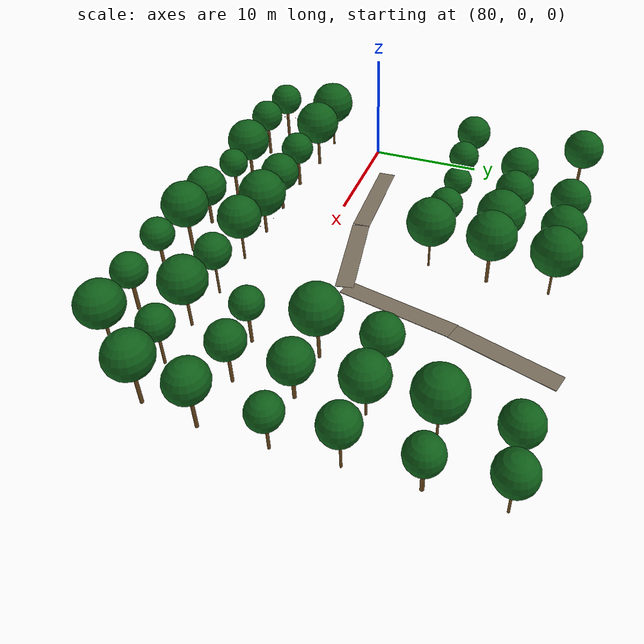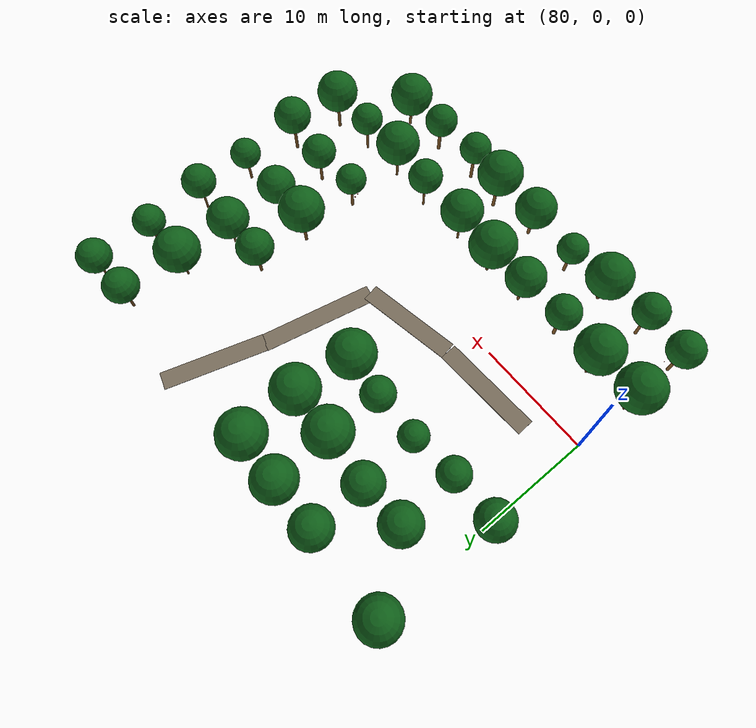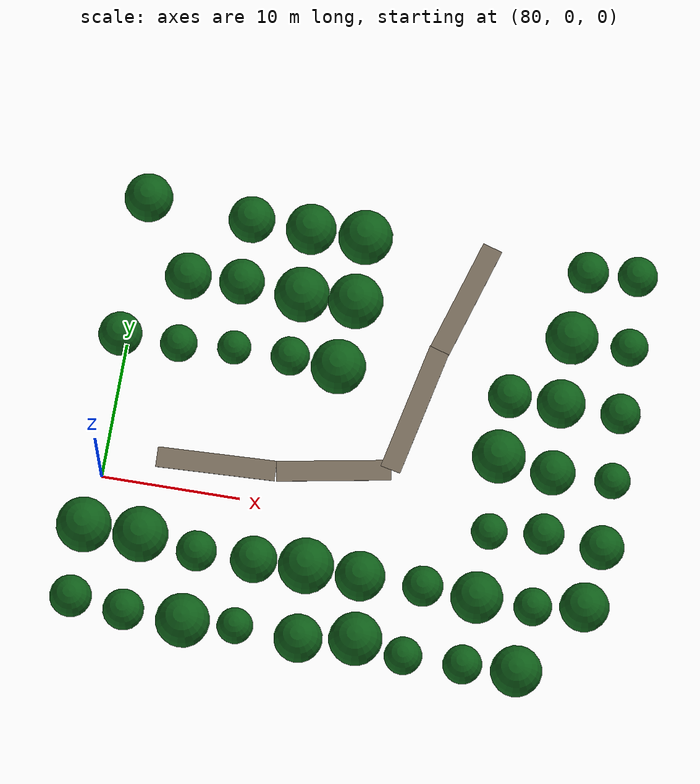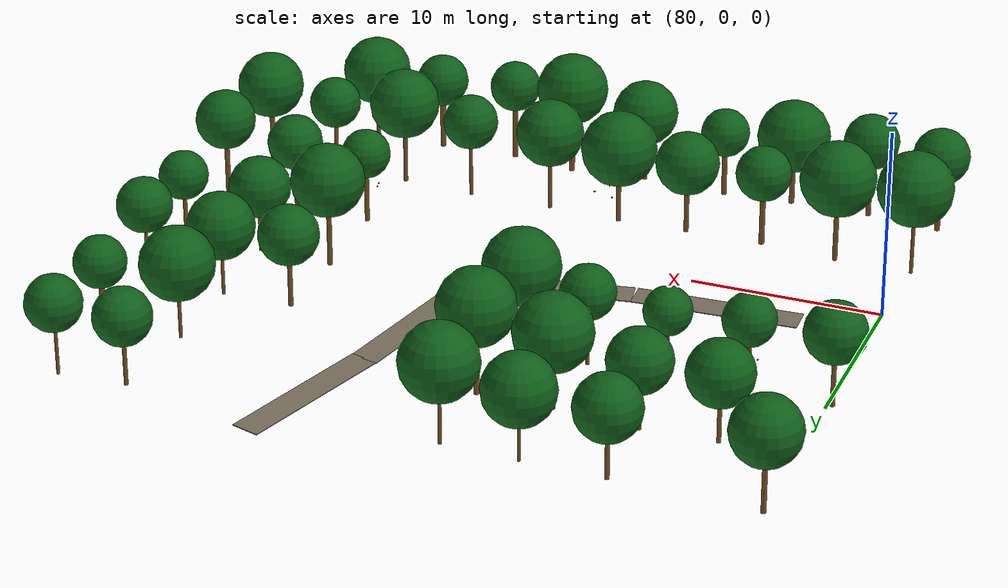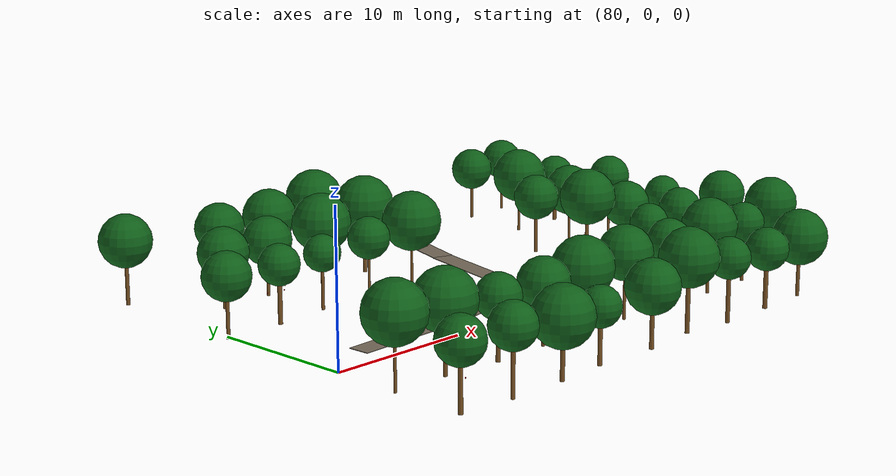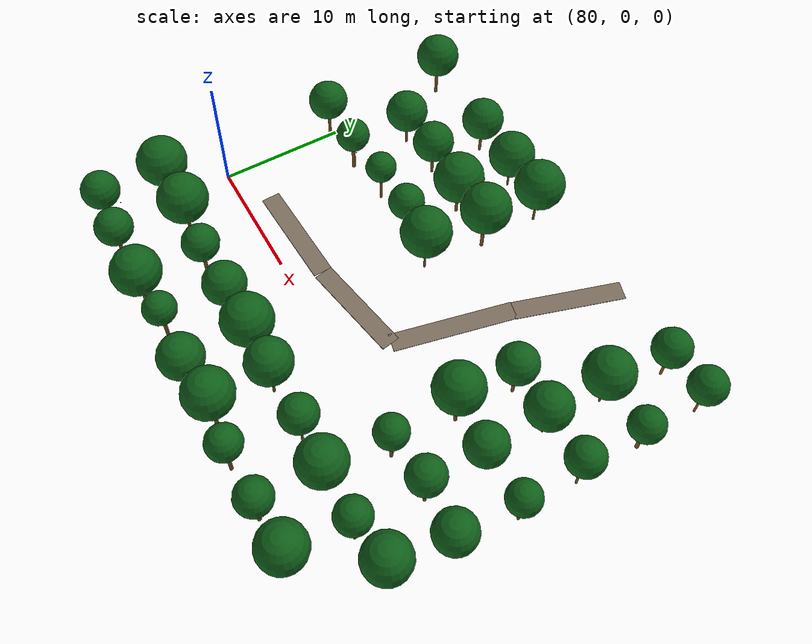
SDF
<sdf version="1.9">
 <world name="cheongsong_orchard">
  <model name="road_32">
   <static>true</static>
   <pose>87.9 2.3 0.02 0 0 0.0412</pose>
   <link name="link">
    <collision name="collision">
     <geometry><box><size>8.6 1.5 0.04</size></box></geometry>
     <surface><friction><ode><mu>0.9</mu><mu2>0.9</mu2></ode></friction></surface>
    </collision>
    <visual name="visual">
     <geometry><box><size>8.6 1.5 0.04</size></box></geometry>
     <material><ambient>0.4 0.35 0.28 1</ambient><diffuse>0.5 0.45 0.38 1</diffuse></material>
    </visual>
   </link>
  </model>
  <model name="road_33">
   <static>true</static>
   <pose>96.3 3.2 0.02 0 0 0.1778</pose>
   <link name="link">
    <collision name="collision">
     <geometry><box><size>8.2 1.5 0.04</size></box></geometry>
     <surface><friction><ode><mu>0.9</mu><mu2>0.9</mu2></ode></friction></surface>
    </collision>
    <visual name="visual">
     <geometry><box><size>8.2 1.5 0.04</size></box></geometry>
     <material><ambient>0.4 0.35 0.28 1</ambient><diffuse>0.5 0.45 0.38 1</diffuse></material>
    </visual>
   </link>
  </model>
  <model name="road_34">
   <static>true</static>
   <pose>101.3 8.7 0.02 0 0 1.3587</pose>
   <link name="link">
    <collision name="collision">
     <geometry><box><size>9.7 1.5 0.04</size></box></geometry>
     <surface><friction><ode><mu>0.9</mu><mu2>0.9</mu2></ode></friction></surface>
    </collision>
    <visual name="visual">
     <geometry><box><size>9.7 1.5 0.04</size></box></geometry>
     <material><ambient>0.4 0.35 0.28 1</ambient><diffuse>0.5 0.45 0.38 1</diffuse></material>
    </visual>
   </link>
  </model>
  <model name="road_35">
   <static>true</static>
   <pose>103.6 17.5 0.02 0 0 1.2752</pose>
   <link name="link">
    <collision name="collision">
     <geometry><box><size>8.7 1.5 0.04</size></box></geometry>
     <surface><friction><ode><mu>0.9</mu><mu2>0.9</mu2></ode></friction></surface>
    </collision>
    <visual name="visual">
     <geometry><box><size>8.7 1.5 0.04</size></box></geometry>
     <material><ambient>0.4 0.35 0.28 1</ambient><diffuse>0.5 0.45 0.38 1</diffuse></material>
    </visual>
   </link>
  </model>
  <model name="apple_tree_1160">
   <static>true</static>
   <pose>79.80 -10.03 0 0 0 0</pose>
   <link name="link">
    <collision name="trunk_col">
     <pose>0 0 1.37 0 0 0</pose>
     <geometry><cylinder><radius>0.137</radius><length>2.74</length></cylinder></geometry>
    </collision>
    <visual name="trunk_vis">
     <pose>0 0 1.37 0 0 0</pose>
     <geometry><cylinder><radius>0.137</radius><length>2.74</length></cylinder></geometry>
     <material><ambient>0.35 0.22 0.08 1</ambient><diffuse>0.45 0.30 0.12 1</diffuse></material>
    </visual>
    <collision name="canopy_col">
     <pose>0 0 4.25 0 0 0</pose>
     <geometry><sphere><radius>1.50</radius></sphere></geometry>
    </collision>
    <visual name="canopy_vis">
     <pose>0 0 4.25 0 0 0</pose>
     <geometry><sphere><radius>1.50</radius></sphere></geometry>
     <material><ambient>0.04 0.28 0.06 1</ambient><diffuse>0.06 0.38 0.10 1</diffuse></material>
    </visual>
   </link>
  </model>
  <model name="apple_tree_1161">
   <static>true</static>
   <pose>83.63 -10.39 0 0 0 0</pose>
   <link name="link">
    <collision name="trunk_col">
     <pose>0 0 1.41 0 0 0</pose>
     <geometry><cylinder><radius>0.130</radius><length>2.81</length></cylinder></geometry>
    </collision>
    <visual name="trunk_vis">
     <pose>0 0 1.41 0 0 0</pose>
     <geometry><cylinder><radius>0.130</radius><length>2.81</length></cylinder></geometry>
     <material><ambient>0.35 0.22 0.08 1</ambient><diffuse>0.45 0.30 0.12 1</diffuse></material>
    </visual>
    <collision name="canopy_col">
     <pose>0 0 4.29 0 0 0</pose>
     <geometry><sphere><radius>1.47</radius></sphere></geometry>
    </collision>
    <visual name="canopy_vis">
     <pose>0 0 4.29 0 0 0</pose>
     <geometry><sphere><radius>1.47</radius></sphere></geometry>
     <material><ambient>0.04 0.28 0.06 1</ambient><diffuse>0.06 0.38 0.10 1</diffuse></material>
    </visual>
   </link>
  </model>
  <model name="apple_tree_1162">
   <static>true</static>
   <pose>87.84 -10.38 0 0 0 0</pose>
   <link name="link">
    <collision name="trunk_col">
     <pose>0 0 0.99 0 0 0</pose>
     <geometry><cylinder><radius>0.139</radius><length>1.97</length></cylinder></geometry>
    </collision>
    <visual name="trunk_vis">
     <pose>0 0 0.99 0 0 0</pose>
     <geometry><cylinder><radius>0.139</radius><length>1.97</length></cylinder></geometry>
     <material><ambient>0.35 0.22 0.08 1</ambient><diffuse>0.45 0.30 0.12 1</diffuse></material>
    </visual>
    <collision name="canopy_col">
     <pose>0 0 3.90 0 0 0</pose>
     <geometry><sphere><radius>1.93</radius></sphere></geometry>
    </collision>
    <visual name="canopy_vis">
     <pose>0 0 3.90 0 0 0</pose>
     <geometry><sphere><radius>1.93</radius></sphere></geometry>
     <material><ambient>0.04 0.28 0.06 1</ambient><diffuse>0.06 0.38 0.10 1</diffuse></material>
    </visual>
   </link>
  </model>
  <model name="apple_tree_1163">
   <static>true</static>
   <pose>91.52 -10.08 0 0 0 0</pose>
   <link name="link">
    <collision name="trunk_col">
     <pose>0 0 1.16 0 0 0</pose>
     <geometry><cylinder><radius>0.135</radius><length>2.32</length></cylinder></geometry>
    </collision>
    <visual name="trunk_vis">
     <pose>0 0 1.16 0 0 0</pose>
     <geometry><cylinder><radius>0.135</radius><length>2.32</length></cylinder></geometry>
     <material><ambient>0.35 0.22 0.08 1</ambient><diffuse>0.45 0.30 0.12 1</diffuse></material>
    </visual>
    <collision name="canopy_col">
     <pose>0 0 3.61 0 0 0</pose>
     <geometry><sphere><radius>1.29</radius></sphere></geometry>
    </collision>
    <visual name="canopy_vis">
     <pose>0 0 3.61 0 0 0</pose>
     <geometry><sphere><radius>1.29</radius></sphere></geometry>
     <material><ambient>0.04 0.28 0.06 1</ambient><diffuse>0.06 0.38 0.10 1</diffuse></material>
    </visual>
   </link>
  </model>
  <model name="apple_tree_1164">
   <static>true</static>
   <pose>96.07 -10.31 0 0 0 0</pose>
   <link name="link">
    <collision name="trunk_col">
     <pose>0 0 1.09 0 0 0</pose>
     <geometry><cylinder><radius>0.137</radius><length>2.18</length></cylinder></geometry>
    </collision>
    <visual name="trunk_vis">
     <pose>0 0 1.09 0 0 0</pose>
     <geometry><cylinder><radius>0.137</radius><length>2.18</length></cylinder></geometry>
     <material><ambient>0.35 0.22 0.08 1</ambient><diffuse>0.45 0.30 0.12 1</diffuse></material>
    </visual>
    <collision name="canopy_col">
     <pose>0 0 3.91 0 0 0</pose>
     <geometry><sphere><radius>1.73</radius></sphere></geometry>
    </collision>
    <visual name="canopy_vis">
     <pose>0 0 3.91 0 0 0</pose>
     <geometry><sphere><radius>1.73</radius></sphere></geometry>
     <material><ambient>0.04 0.28 0.06 1</ambient><diffuse>0.06 0.38 0.10 1</diffuse></material>
    </visual>
   </link>
  </model>
  <model name="apple_tree_1165">
   <static>true</static>
   <pose>100.08 -9.90 0 0 0 0</pose>
   <link name="link">
    <collision name="trunk_col">
     <pose>0 0 1.46 0 0 0</pose>
     <geometry><cylinder><radius>0.142</radius><length>2.92</length></cylinder></geometry>
    </collision>
    <visual name="trunk_vis">
     <pose>0 0 1.46 0 0 0</pose>
     <geometry><cylinder><radius>0.142</radius><length>2.92</length></cylinder></geometry>
     <material><ambient>0.35 0.22 0.08 1</ambient><diffuse>0.45 0.30 0.12 1</diffuse></material>
    </visual>
    <collision name="canopy_col">
     <pose>0 0 4.83 0 0 0</pose>
     <geometry><sphere><radius>1.90</radius></sphere></geometry>
    </collision>
    <visual name="canopy_vis">
     <pose>0 0 4.83 0 0 0</pose>
     <geometry><sphere><radius>1.90</radius></sphere></geometry>
     <material><ambient>0.04 0.28 0.06 1</ambient><diffuse>0.06 0.38 0.10 1</diffuse></material>
    </visual>
   </link>
  </model>
  <model name="apple_tree_1166">
   <static>true</static>
   <pose>103.55 -10.40 0 0 0 0</pose>
   <link name="link">
    <collision name="trunk_col">
     <pose>0 0 1.43 0 0 0</pose>
     <geometry><cylinder><radius>0.136</radius><length>2.85</length></cylinder></geometry>
    </collision>
    <visual name="trunk_vis">
     <pose>0 0 1.43 0 0 0</pose>
     <geometry><cylinder><radius>0.136</radius><length>2.85</length></cylinder></geometry>
     <material><ambient>0.35 0.22 0.08 1</ambient><diffuse>0.45 0.30 0.12 1</diffuse></material>
    </visual>
    <collision name="canopy_col">
     <pose>0 0 4.20 0 0 0</pose>
     <geometry><sphere><radius>1.35</radius></sphere></geometry>
    </collision>
    <visual name="canopy_vis">
     <pose>0 0 4.20 0 0 0</pose>
     <geometry><sphere><radius>1.35</radius></sphere></geometry>
     <material><ambient>0.04 0.28 0.06 1</ambient><diffuse>0.06 0.38 0.10 1</diffuse></material>
    </visual>
   </link>
  </model>
  <model name="apple_tree_1167">
   <static>true</static>
   <pose>107.74 -10.26 0 0 0 0</pose>
   <link name="link">
    <collision name="trunk_col">
     <pose>0 0 1.27 0 0 0</pose>
     <geometry><cylinder><radius>0.148</radius><length>2.53</length></cylinder></geometry>
    </collision>
    <visual name="trunk_vis">
     <pose>0 0 1.27 0 0 0</pose>
     <geometry><cylinder><radius>0.148</radius><length>2.53</length></cylinder></geometry>
     <material><ambient>0.35 0.22 0.08 1</ambient><diffuse>0.45 0.30 0.12 1</diffuse></material>
    </visual>
    <collision name="canopy_col">
     <pose>0 0 3.93 0 0 0</pose>
     <geometry><sphere><radius>1.40</radius></sphere></geometry>
    </collision>
    <visual name="canopy_vis">
     <pose>0 0 3.93 0 0 0</pose>
     <geometry><sphere><radius>1.40</radius></sphere></geometry>
     <material><ambient>0.04 0.28 0.06 1</ambient><diffuse>0.06 0.38 0.10 1</diffuse></material>
    </visual>
   </link>
  </model>
  <model name="apple_tree_1168">
   <static>true</static>
   <pose>111.54 -10.12 0 0 0 0</pose>
   <link name="link">
    <collision name="trunk_col">
     <pose>0 0 1.07 0 0 0</pose>
     <geometry><cylinder><radius>0.117</radius><length>2.13</length></cylinder></geometry>
    </collision>
    <visual name="trunk_vis">
     <pose>0 0 1.07 0 0 0</pose>
     <geometry><cylinder><radius>0.117</radius><length>2.13</length></cylinder></geometry>
     <material><ambient>0.35 0.22 0.08 1</ambient><diffuse>0.45 0.30 0.12 1</diffuse></material>
    </visual>
    <collision name="canopy_col">
     <pose>0 0 3.97 0 0 0</pose>
     <geometry><sphere><radius>1.83</radius></sphere></geometry>
    </collision>
    <visual name="canopy_vis">
     <pose>0 0 3.97 0 0 0</pose>
     <geometry><sphere><radius>1.83</radius></sphere></geometry>
     <material><ambient>0.04 0.28 0.06 1</ambient><diffuse>0.06 0.38 0.10 1</diffuse></material>
    </visual>
   </link>
  </model>
  <model name="apple_tree_1216">
   <static>true</static>
   <pose>79.83 -4.90 0 0 0 0</pose>
   <link name="link">
    <collision name="trunk_col">
     <pose>0 0 1.39 0 0 0</pose>
     <geometry><cylinder><radius>0.092</radius><length>2.78</length></cylinder></geometry>
    </collision>
    <visual name="trunk_vis">
     <pose>0 0 1.39 0 0 0</pose>
     <geometry><cylinder><radius>0.092</radius><length>2.78</length></cylinder></geometry>
     <material><ambient>0.35 0.22 0.08 1</ambient><diffuse>0.45 0.30 0.12 1</diffuse></material>
    </visual>
    <collision name="canopy_col">
     <pose>0 0 4.75 0 0 0</pose>
     <geometry><sphere><radius>1.97</radius></sphere></geometry>
    </collision>
    <visual name="canopy_vis">
     <pose>0 0 4.75 0 0 0</pose>
     <geometry><sphere><radius>1.97</radius></sphere></geometry>
     <material><ambient>0.04 0.28 0.06 1</ambient><diffuse>0.06 0.38 0.10 1</diffuse></material>
    </visual>
   </link>
  </model>
  <model name="apple_tree_1217">
   <static>true</static>
   <pose>83.87 -4.90 0 0 0 0</pose>
   <link name="link">
    <collision name="trunk_col">
     <pose>0 0 1.31 0 0 0</pose>
     <geometry><cylinder><radius>0.127</radius><length>2.63</length></cylinder></geometry>
    </collision>
    <visual name="trunk_vis">
     <pose>0 0 1.31 0 0 0</pose>
     <geometry><cylinder><radius>0.127</radius><length>2.63</length></cylinder></geometry>
     <material><ambient>0.35 0.22 0.08 1</ambient><diffuse>0.45 0.30 0.12 1</diffuse></material>
    </visual>
    <collision name="canopy_col">
     <pose>0 0 4.61 0 0 0</pose>
     <geometry><sphere><radius>1.98</radius></sphere></geometry>
    </collision>
    <visual name="canopy_vis">
     <pose>0 0 4.61 0 0 0</pose>
     <geometry><sphere><radius>1.98</radius></sphere></geometry>
     <material><ambient>0.04 0.28 0.06 1</ambient><diffuse>0.06 0.38 0.10 1</diffuse></material>
    </visual>
   </link>
  </model>
  <model name="apple_tree_1218">
   <static>true</static>
   <pose>87.93 -5.29 0 0 0 0</pose>
   <link name="link">
    <collision name="trunk_col">
     <pose>0 0 1.28 0 0 0</pose>
     <geometry><cylinder><radius>0.142</radius><length>2.57</length></cylinder></geometry>
    </collision>
    <visual name="trunk_vis">
     <pose>0 0 1.28 0 0 0</pose>
     <geometry><cylinder><radius>0.142</radius><length>2.57</length></cylinder></geometry>
     <material><ambient>0.35 0.22 0.08 1</ambient><diffuse>0.45 0.30 0.12 1</diffuse></material>
    </visual>
    <collision name="canopy_col">
     <pose>0 0 4.02 0 0 0</pose>
     <geometry><sphere><radius>1.45</radius></sphere></geometry>
    </collision>
    <visual name="canopy_vis">
     <pose>0 0 4.02 0 0 0</pose>
     <geometry><sphere><radius>1.45</radius></sphere></geometry>
     <material><ambient>0.04 0.28 0.06 1</ambient><diffuse>0.06 0.38 0.10 1</diffuse></material>
    </visual>
   </link>
  </model>
  <model name="apple_tree_1219">
   <static>true</static>
   <pose>92.02 -5.20 0 0 0 0</pose>
   <link name="link">
    <collision name="trunk_col">
     <pose>0 0 1.14 0 0 0</pose>
     <geometry><cylinder><radius>0.123</radius><length>2.28</length></cylinder></geometry>
    </collision>
    <visual name="trunk_vis">
     <pose>0 0 1.14 0 0 0</pose>
     <geometry><cylinder><radius>0.123</radius><length>2.28</length></cylinder></geometry>
     <material><ambient>0.35 0.22 0.08 1</ambient><diffuse>0.45 0.30 0.12 1</diffuse></material>
    </visual>
    <collision name="canopy_col">
     <pose>0 0 3.94 0 0 0</pose>
     <geometry><sphere><radius>1.67</radius></sphere></geometry>
    </collision>
    <visual name="canopy_vis">
     <pose>0 0 3.94 0 0 0</pose>
     <geometry><sphere><radius>1.67</radius></sphere></geometry>
     <material><ambient>0.04 0.28 0.06 1</ambient><diffuse>0.06 0.38 0.10 1</diffuse></material>
    </visual>
   </link>
  </model>
  <model name="apple_tree_1220">
   <static>true</static>
   <pose>95.74 -5.11 0 0 0 0</pose>
   <link name="link">
    <collision name="trunk_col">
     <pose>0 0 1.09 0 0 0</pose>
     <geometry><cylinder><radius>0.121</radius><length>2.18</length></cylinder></geometry>
    </collision>
    <visual name="trunk_vis">
     <pose>0 0 1.09 0 0 0</pose>
     <geometry><cylinder><radius>0.121</radius><length>2.18</length></cylinder></geometry>
     <material><ambient>0.35 0.22 0.08 1</ambient><diffuse>0.45 0.30 0.12 1</diffuse></material>
    </visual>
    <collision name="canopy_col">
     <pose>0 0 4.17 0 0 0</pose>
     <geometry><sphere><radius>1.99</radius></sphere></geometry>
    </collision>
    <visual name="canopy_vis">
     <pose>0 0 4.17 0 0 0</pose>
     <geometry><sphere><radius>1.99</radius></sphere></geometry>
     <material><ambient>0.04 0.28 0.06 1</ambient><diffuse>0.06 0.38 0.10 1</diffuse></material>
    </visual>
   </link>
  </model>
  <model name="apple_tree_1221">
   <static>true</static>
   <pose>99.63 -5.26 0 0 0 0</pose>
   <link name="link">
    <collision name="trunk_col">
     <pose>0 0 1.29 0 0 0</pose>
     <geometry><cylinder><radius>0.097</radius><length>2.58</length></cylinder></geometry>
    </collision>
    <visual name="trunk_vis">
     <pose>0 0 1.29 0 0 0</pose>
     <geometry><cylinder><radius>0.097</radius><length>2.58</length></cylinder></geometry>
     <material><ambient>0.35 0.22 0.08 1</ambient><diffuse>0.45 0.30 0.12 1</diffuse></material>
    </visual>
    <collision name="canopy_col">
     <pose>0 0 4.36 0 0 0</pose>
     <geometry><sphere><radius>1.78</radius></sphere></geometry>
    </collision>
    <visual name="canopy_vis">
     <pose>0 0 4.36 0 0 0</pose>
     <geometry><sphere><radius>1.78</radius></sphere></geometry>
     <material><ambient>0.04 0.28 0.06 1</ambient><diffuse>0.06 0.38 0.10 1</diffuse></material>
    </visual>
   </link>
  </model>
  <model name="apple_tree_1222">
   <static>true</static>
   <pose>104.10 -5.22 0 0 0 0</pose>
   <link name="link">
    <collision name="trunk_col">
     <pose>0 0 1.40 0 0 0</pose>
     <geometry><cylinder><radius>0.089</radius><length>2.81</length></cylinder></geometry>
    </collision>
    <visual name="trunk_vis">
     <pose>0 0 1.40 0 0 0</pose>
     <geometry><cylinder><radius>0.089</radius><length>2.81</length></cylinder></geometry>
     <material><ambient>0.35 0.22 0.08 1</ambient><diffuse>0.45 0.30 0.12 1</diffuse></material>
    </visual>
    <collision name="canopy_col">
     <pose>0 0 4.26 0 0 0</pose>
     <geometry><sphere><radius>1.45</radius></sphere></geometry>
    </collision>
    <visual name="canopy_vis">
     <pose>0 0 4.26 0 0 0</pose>
     <geometry><sphere><radius>1.45</radius></sphere></geometry>
     <material><ambient>0.04 0.28 0.06 1</ambient><diffuse>0.06 0.38 0.10 1</diffuse></material>
    </visual>
   </link>
  </model>
  <model name="apple_tree_1223">
   <static>true</static>
   <pose>107.98 -5.47 0 0 0 0</pose>
   <link name="link">
    <collision name="trunk_col">
     <pose>0 0 1.36 0 0 0</pose>
     <geometry><cylinder><radius>0.109</radius><length>2.72</length></cylinder></geometry>
    </collision>
    <visual name="trunk_vis">
     <pose>0 0 1.36 0 0 0</pose>
     <geometry><cylinder><radius>0.109</radius><length>2.72</length></cylinder></geometry>
     <material><ambient>0.35 0.22 0.08 1</ambient><diffuse>0.45 0.30 0.12 1</diffuse></material>
    </visual>
    <collision name="canopy_col">
     <pose>0 0 4.57 0 0 0</pose>
     <geometry><sphere><radius>1.85</radius></sphere></geometry>
    </collision>
    <visual name="canopy_vis">
     <pose>0 0 4.57 0 0 0</pose>
     <geometry><sphere><radius>1.85</radius></sphere></geometry>
     <material><ambient>0.04 0.28 0.06 1</ambient><diffuse>0.06 0.38 0.10 1</diffuse></material>
    </visual>
   </link>
  </model>
  <model name="apple_tree_1224">
   <static>true</static>
   <pose>111.96 -5.35 0 0 0 0</pose>
   <link name="link">
    <collision name="trunk_col">
     <pose>0 0 1.33 0 0 0</pose>
     <geometry><cylinder><radius>0.104</radius><length>2.66</length></cylinder></geometry>
    </collision>
    <visual name="trunk_vis">
     <pose>0 0 1.33 0 0 0</pose>
     <geometry><cylinder><radius>0.104</radius><length>2.66</length></cylinder></geometry>
     <material><ambient>0.35 0.22 0.08 1</ambient><diffuse>0.45 0.30 0.12 1</diffuse></material>
    </visual>
    <collision name="canopy_col">
     <pose>0 0 4.03 0 0 0</pose>
     <geometry><sphere><radius>1.36</radius></sphere></geometry>
    </collision>
    <visual name="canopy_vis">
     <pose>0 0 4.03 0 0 0</pose>
     <geometry><sphere><radius>1.36</radius></sphere></geometry>
     <material><ambient>0.04 0.28 0.06 1</ambient><diffuse>0.06 0.38 0.10 1</diffuse></material>
    </visual>
   </link>
  </model>
  <model name="apple_tree_1225">
   <static>true</static>
   <pose>115.54 -4.94 0 0 0 0</pose>
   <link name="link">
    <collision name="trunk_col">
     <pose>0 0 1.46 0 0 0</pose>
     <geometry><cylinder><radius>0.136</radius><length>2.91</length></cylinder></geometry>
    </collision>
    <visual name="trunk_vis">
     <pose>0 0 1.46 0 0 0</pose>
     <geometry><cylinder><radius>0.136</radius><length>2.91</length></cylinder></geometry>
     <material><ambient>0.35 0.22 0.08 1</ambient><diffuse>0.45 0.30 0.12 1</diffuse></material>
    </visual>
    <collision name="canopy_col">
     <pose>0 0 4.67 0 0 0</pose>
     <geometry><sphere><radius>1.76</radius></sphere></geometry>
    </collision>
    <visual name="canopy_vis">
     <pose>0 0 4.67 0 0 0</pose>
     <geometry><sphere><radius>1.76</radius></sphere></geometry>
     <material><ambient>0.04 0.28 0.06 1</ambient><diffuse>0.06 0.38 0.10 1</diffuse></material>
    </visual>
   </link>
  </model>
  <model name="apple_tree_1270">
   <static>true</static>
   <pose>108.07 -0.41 0 0 0 0</pose>
   <link name="link">
    <collision name="trunk_col">
     <pose>0 0 1.30 0 0 0</pose>
     <geometry><cylinder><radius>0.121</radius><length>2.60</length></cylinder></geometry>
    </collision>
    <visual name="trunk_vis">
     <pose>0 0 1.30 0 0 0</pose>
     <geometry><cylinder><radius>0.121</radius><length>2.60</length></cylinder></geometry>
     <material><ambient>0.35 0.22 0.08 1</ambient><diffuse>0.45 0.30 0.12 1</diffuse></material>
    </visual>
    <collision name="canopy_col">
     <pose>0 0 3.88 0 0 0</pose>
     <geometry><sphere><radius>1.29</radius></sphere></geometry>
    </collision>
    <visual name="canopy_vis">
     <pose>0 0 3.88 0 0 0</pose>
     <geometry><sphere><radius>1.29</radius></sphere></geometry>
     <material><ambient>0.04 0.28 0.06 1</ambient><diffuse>0.06 0.38 0.10 1</diffuse></material>
    </visual>
   </link>
  </model>
  <model name="apple_tree_1271">
   <static>true</static>
   <pose>111.91 -0.01 0 0 0 0</pose>
   <link name="link">
    <collision name="trunk_col">
     <pose>0 0 1.32 0 0 0</pose>
     <geometry><cylinder><radius>0.122</radius><length>2.64</length></cylinder></geometry>
    </collision>
    <visual name="trunk_vis">
     <pose>0 0 1.32 0 0 0</pose>
     <geometry><cylinder><radius>0.122</radius><length>2.64</length></cylinder></geometry>
     <material><ambient>0.35 0.22 0.08 1</ambient><diffuse>0.45 0.30 0.12 1</diffuse></material>
    </visual>
    <collision name="canopy_col">
     <pose>0 0 4.08 0 0 0</pose>
     <geometry><sphere><radius>1.45</radius></sphere></geometry>
    </collision>
    <visual name="canopy_vis">
     <pose>0 0 4.08 0 0 0</pose>
     <geometry><sphere><radius>1.45</radius></sphere></geometry>
     <material><ambient>0.04 0.28 0.06 1</ambient><diffuse>0.06 0.38 0.10 1</diffuse></material>
    </visual>
   </link>
  </model>
  <model name="apple_tree_1272">
   <static>true</static>
   <pose>116.10 -0.42 0 0 0 0</pose>
   <link name="link">
    <collision name="trunk_col">
     <pose>0 0 1.46 0 0 0</pose>
     <geometry><cylinder><radius>0.129</radius><length>2.92</length></cylinder></geometry>
    </collision>
    <visual name="trunk_vis">
     <pose>0 0 1.46 0 0 0</pose>
     <geometry><cylinder><radius>0.129</radius><length>2.92</length></cylinder></geometry>
     <material><ambient>0.35 0.22 0.08 1</ambient><diffuse>0.45 0.30 0.12 1</diffuse></material>
    </visual>
    <collision name="canopy_col">
     <pose>0 0 4.50 0 0 0</pose>
     <geometry><sphere><radius>1.58</radius></sphere></geometry>
    </collision>
    <visual name="canopy_vis">
     <pose>0 0 4.50 0 0 0</pose>
     <geometry><sphere><radius>1.58</radius></sphere></geometry>
     <material><ambient>0.04 0.28 0.06 1</ambient><diffuse>0.06 0.38 0.10 1</diffuse></material>
    </visual>
   </link>
  </model>
  <model name="apple_tree_1314">
   <static>true</static>
   <pose>107.88 4.87 0 0 0 0</pose>
   <link name="link">
    <collision name="trunk_col">
     <pose>0 0 1.45 0 0 0</pose>
     <geometry><cylinder><radius>0.127</radius><length>2.89</length></cylinder></geometry>
    </collision>
    <visual name="trunk_vis">
     <pose>0 0 1.45 0 0 0</pose>
     <geometry><cylinder><radius>0.127</radius><length>2.89</length></cylinder></geometry>
     <material><ambient>0.35 0.22 0.08 1</ambient><diffuse>0.45 0.30 0.12 1</diffuse></material>
    </visual>
    <collision name="canopy_col">
     <pose>0 0 4.80 0 0 0</pose>
     <geometry><sphere><radius>1.91</radius></sphere></geometry>
    </collision>
    <visual name="canopy_vis">
     <pose>0 0 4.80 0 0 0</pose>
     <geometry><sphere><radius>1.91</radius></sphere></geometry>
     <material><ambient>0.04 0.28 0.06 1</ambient><diffuse>0.06 0.38 0.10 1</diffuse></material>
    </visual>
   </link>
  </model>
  <model name="apple_tree_1315">
   <static>true</static>
   <pose>111.82 4.65 0 0 0 0</pose>
   <link name="link">
    <collision name="trunk_col">
     <pose>0 0 1.01 0 0 0</pose>
     <geometry><cylinder><radius>0.139</radius><length>2.02</length></cylinder></geometry>
    </collision>
    <visual name="trunk_vis">
     <pose>0 0 1.01 0 0 0</pose>
     <geometry><cylinder><radius>0.139</radius><length>2.02</length></cylinder></geometry>
     <material><ambient>0.35 0.22 0.08 1</ambient><diffuse>0.45 0.30 0.12 1</diffuse></material>
    </visual>
    <collision name="canopy_col">
     <pose>0 0 3.63 0 0 0</pose>
     <geometry><sphere><radius>1.61</radius></sphere></geometry>
    </collision>
    <visual name="canopy_vis">
     <pose>0 0 3.63 0 0 0</pose>
     <geometry><sphere><radius>1.61</radius></sphere></geometry>
     <material><ambient>0.04 0.28 0.06 1</ambient><diffuse>0.06 0.38 0.10 1</diffuse></material>
    </visual>
   </link>
  </model>
  <model name="apple_tree_1316">
   <static>true</static>
   <pose>116.08 4.76 0 0 0 0</pose>
   <link name="link">
    <collision name="trunk_col">
     <pose>0 0 1.16 0 0 0</pose>
     <geometry><cylinder><radius>0.106</radius><length>2.32</length></cylinder></geometry>
    </collision>
    <visual name="trunk_vis">
     <pose>0 0 1.16 0 0 0</pose>
     <geometry><cylinder><radius>0.106</radius><length>2.32</length></cylinder></geometry>
     <material><ambient>0.35 0.22 0.08 1</ambient><diffuse>0.45 0.30 0.12 1</diffuse></material>
    </visual>
    <collision name="canopy_col">
     <pose>0 0 3.61 0 0 0</pose>
     <geometry><sphere><radius>1.29</radius></sphere></geometry>
    </collision>
    <visual name="canopy_vis">
     <pose>0 0 3.61 0 0 0</pose>
     <geometry><sphere><radius>1.29</radius></sphere></geometry>
     <material><ambient>0.04 0.28 0.06 1</ambient><diffuse>0.06 0.38 0.10 1</diffuse></material>
    </visual>
   </link>
  </model>
  <model name="apple_tree_1359">
   <static>true</static>
   <pose>79.77 9.60 0 0 0 0</pose>
   <link name="link">
    <collision name="trunk_col">
     <pose>0 0 1.21 0 0 0</pose>
     <geometry><cylinder><radius>0.115</radius><length>2.42</length></cylinder></geometry>
    </collision>
    <visual name="trunk_vis">
     <pose>0 0 1.21 0 0 0</pose>
     <geometry><cylinder><radius>0.115</radius><length>2.42</length></cylinder></geometry>
     <material><ambient>0.35 0.22 0.08 1</ambient><diffuse>0.45 0.30 0.12 1</diffuse></material>
    </visual>
    <collision name="canopy_col">
     <pose>0 0 3.98 0 0 0</pose>
     <geometry><sphere><radius>1.57</radius></sphere></geometry>
    </collision>
    <visual name="canopy_vis">
     <pose>0 0 3.98 0 0 0</pose>
     <geometry><sphere><radius>1.57</radius></sphere></geometry>
     <material><ambient>0.04 0.28 0.06 1</ambient><diffuse>0.06 0.38 0.10 1</diffuse></material>
    </visual>
   </link>
  </model>
  <model name="apple_tree_1360">
   <static>true</static>
   <pose>84.00 9.62 0 0 0 0</pose>
   <link name="link">
    <collision name="trunk_col">
     <pose>0 0 1.25 0 0 0</pose>
     <geometry><cylinder><radius>0.146</radius><length>2.51</length></cylinder></geometry>
    </collision>
    <visual name="trunk_vis">
     <pose>0 0 1.25 0 0 0</pose>
     <geometry><cylinder><radius>0.146</radius><length>2.51</length></cylinder></geometry>
     <material><ambient>0.35 0.22 0.08 1</ambient><diffuse>0.45 0.30 0.12 1</diffuse></material>
    </visual>
    <collision name="canopy_col">
     <pose>0 0 3.85 0 0 0</pose>
     <geometry><sphere><radius>1.34</radius></sphere></geometry>
    </collision>
    <visual name="canopy_vis">
     <pose>0 0 3.85 0 0 0</pose>
     <geometry><sphere><radius>1.34</radius></sphere></geometry>
     <material><ambient>0.04 0.28 0.06 1</ambient><diffuse>0.06 0.38 0.10 1</diffuse></material>
    </visual>
   </link>
  </model>
  <model name="apple_tree_1361">
   <static>true</static>
   <pose>87.95 10.00 0 0 0 0</pose>
   <link name="link">
    <collision name="trunk_col">
     <pose>0 0 1.27 0 0 0</pose>
     <geometry><cylinder><radius>0.106</radius><length>2.54</length></cylinder></geometry>
    </collision>
    <visual name="trunk_vis">
     <pose>0 0 1.27 0 0 0</pose>
     <geometry><cylinder><radius>0.106</radius><length>2.54</length></cylinder></geometry>
     <material><ambient>0.35 0.22 0.08 1</ambient><diffuse>0.45 0.30 0.12 1</diffuse></material>
    </visual>
    <collision name="canopy_col">
     <pose>0 0 3.75 0 0 0</pose>
     <geometry><sphere><radius>1.22</radius></sphere></geometry>
    </collision>
    <visual name="canopy_vis">
     <pose>0 0 3.75 0 0 0</pose>
     <geometry><sphere><radius>1.22</radius></sphere></geometry>
     <material><ambient>0.04 0.28 0.06 1</ambient><diffuse>0.06 0.38 0.10 1</diffuse></material>
    </visual>
   </link>
  </model>
  <model name="apple_tree_1362">
   <static>true</static>
   <pose>92.01 9.97 0 0 0 0</pose>
   <link name="link">
    <collision name="trunk_col">
     <pose>0 0 1.29 0 0 0</pose>
     <geometry><cylinder><radius>0.083</radius><length>2.58</length></cylinder></geometry>
    </collision>
    <visual name="trunk_vis">
     <pose>0 0 1.29 0 0 0</pose>
     <geometry><cylinder><radius>0.083</radius><length>2.58</length></cylinder></geometry>
     <material><ambient>0.35 0.22 0.08 1</ambient><diffuse>0.45 0.30 0.12 1</diffuse></material>
    </visual>
    <collision name="canopy_col">
     <pose>0 0 3.98 0 0 0</pose>
     <geometry><sphere><radius>1.40</radius></sphere></geometry>
    </collision>
    <visual name="canopy_vis">
     <pose>0 0 3.98 0 0 0</pose>
     <geometry><sphere><radius>1.40</radius></sphere></geometry>
     <material><ambient>0.04 0.28 0.06 1</ambient><diffuse>0.06 0.38 0.10 1</diffuse></material>
    </visual>
   </link>
  </model>
  <model name="apple_tree_1363">
   <static>true</static>
   <pose>95.56 9.60 0 0 0 0</pose>
   <link name="link">
    <collision name="trunk_col">
     <pose>0 0 1.28 0 0 0</pose>
     <geometry><cylinder><radius>0.081</radius><length>2.56</length></cylinder></geometry>
    </collision>
    <visual name="trunk_vis">
     <pose>0 0 1.28 0 0 0</pose>
     <geometry><cylinder><radius>0.081</radius><length>2.56</length></cylinder></geometry>
     <material><ambient>0.35 0.22 0.08 1</ambient><diffuse>0.45 0.30 0.12 1</diffuse></material>
    </visual>
    <collision name="canopy_col">
     <pose>0 0 4.53 0 0 0</pose>
     <geometry><sphere><radius>1.97</radius></sphere></geometry>
    </collision>
    <visual name="canopy_vis">
     <pose>0 0 4.53 0 0 0</pose>
     <geometry><sphere><radius>1.97</radius></sphere></geometry>
     <material><ambient>0.04 0.28 0.06 1</ambient><diffuse>0.06 0.38 0.10 1</diffuse></material>
    </visual>
   </link>
  </model>
  <model name="apple_tree_1364">
   <static>true</static>
   <pose>107.93 9.63 0 0 0 0</pose>
   <link name="link">
    <collision name="trunk_col">
     <pose>0 0 1.21 0 0 0</pose>
     <geometry><cylinder><radius>0.119</radius><length>2.42</length></cylinder></geometry>
    </collision>
    <visual name="trunk_vis">
     <pose>0 0 1.21 0 0 0</pose>
     <geometry><cylinder><radius>0.119</radius><length>2.42</length></cylinder></geometry>
     <material><ambient>0.35 0.22 0.08 1</ambient><diffuse>0.45 0.30 0.12 1</diffuse></material>
    </visual>
    <collision name="canopy_col">
     <pose>0 0 3.97 0 0 0</pose>
     <geometry><sphere><radius>1.56</radius></sphere></geometry>
    </collision>
    <visual name="canopy_vis">
     <pose>0 0 3.97 0 0 0</pose>
     <geometry><sphere><radius>1.56</radius></sphere></geometry>
     <material><ambient>0.04 0.28 0.06 1</ambient><diffuse>0.06 0.38 0.10 1</diffuse></material>
    </visual>
   </link>
  </model>
  <model name="apple_tree_1365">
   <static>true</static>
   <pose>111.61 9.71 0 0 0 0</pose>
   <link name="link">
    <collision name="trunk_col">
     <pose>0 0 1.05 0 0 0</pose>
     <geometry><cylinder><radius>0.084</radius><length>2.10</length></cylinder></geometry>
    </collision>
    <visual name="trunk_vis">
     <pose>0 0 1.05 0 0 0</pose>
     <geometry><cylinder><radius>0.084</radius><length>2.10</length></cylinder></geometry>
     <material><ambient>0.35 0.22 0.08 1</ambient><diffuse>0.45 0.30 0.12 1</diffuse></material>
    </visual>
    <collision name="canopy_col">
     <pose>0 0 3.85 0 0 0</pose>
     <geometry><sphere><radius>1.75</radius></sphere></geometry>
    </collision>
    <visual name="canopy_vis">
     <pose>0 0 3.85 0 0 0</pose>
     <geometry><sphere><radius>1.75</radius></sphere></geometry>
     <material><ambient>0.04 0.28 0.06 1</ambient><diffuse>0.06 0.38 0.10 1</diffuse></material>
    </visual>
   </link>
  </model>
  <model name="apple_tree_1366">
   <static>true</static>
   <pose>115.89 9.58 0 0 0 0</pose>
   <link name="link">
    <collision name="trunk_col">
     <pose>0 0 1.38 0 0 0</pose>
     <geometry><cylinder><radius>0.087</radius><length>2.75</length></cylinder></geometry>
    </collision>
    <visual name="trunk_vis">
     <pose>0 0 1.38 0 0 0</pose>
     <geometry><cylinder><radius>0.087</radius><length>2.75</length></cylinder></geometry>
     <material><ambient>0.35 0.22 0.08 1</ambient><diffuse>0.45 0.30 0.12 1</diffuse></material>
    </visual>
    <collision name="canopy_col">
     <pose>0 0 4.19 0 0 0</pose>
     <geometry><sphere><radius>1.44</radius></sphere></geometry>
    </collision>
    <visual name="canopy_vis">
     <pose>0 0 4.19 0 0 0</pose>
     <geometry><sphere><radius>1.44</radius></sphere></geometry>
     <material><ambient>0.04 0.28 0.06 1</ambient><diffuse>0.06 0.38 0.10 1</diffuse></material>
    </visual>
   </link>
  </model>
  <model name="apple_tree_1413">
   <static>true</static>
   <pose>83.77 14.75 0 0 0 0</pose>
   <link name="link">
    <collision name="trunk_col">
     <pose>0 0 1.01 0 0 0</pose>
     <geometry><cylinder><radius>0.104</radius><length>2.01</length></cylinder></geometry>
    </collision>
    <visual name="trunk_vis">
     <pose>0 0 1.01 0 0 0</pose>
     <geometry><cylinder><radius>0.104</radius><length>2.01</length></cylinder></geometry>
     <material><ambient>0.35 0.22 0.08 1</ambient><diffuse>0.45 0.30 0.12 1</diffuse></material>
    </visual>
    <collision name="canopy_col">
     <pose>0 0 3.70 0 0 0</pose>
     <geometry><sphere><radius>1.68</radius></sphere></geometry>
    </collision>
    <visual name="canopy_vis">
     <pose>0 0 3.70 0 0 0</pose>
     <geometry><sphere><radius>1.68</radius></sphere></geometry>
     <material><ambient>0.04 0.28 0.06 1</ambient><diffuse>0.06 0.38 0.10 1</diffuse></material>
    </visual>
   </link>
  </model>
  <model name="apple_tree_1414">
   <static>true</static>
   <pose>87.64 14.96 0 0 0 0</pose>
   <link name="link">
    <collision name="trunk_col">
     <pose>0 0 1.03 0 0 0</pose>
     <geometry><cylinder><radius>0.112</radius><length>2.06</length></cylinder></geometry>
    </collision>
    <visual name="trunk_vis">
     <pose>0 0 1.03 0 0 0</pose>
     <geometry><cylinder><radius>0.112</radius><length>2.06</length></cylinder></geometry>
     <material><ambient>0.35 0.22 0.08 1</ambient><diffuse>0.45 0.30 0.12 1</diffuse></material>
    </visual>
    <collision name="canopy_col">
     <pose>0 0 3.70 0 0 0</pose>
     <geometry><sphere><radius>1.64</radius></sphere></geometry>
    </collision>
    <visual name="canopy_vis">
     <pose>0 0 3.70 0 0 0</pose>
     <geometry><sphere><radius>1.64</radius></sphere></geometry>
     <material><ambient>0.04 0.28 0.06 1</ambient><diffuse>0.06 0.38 0.10 1</diffuse></material>
    </visual>
   </link>
  </model>
  <model name="apple_tree_1415">
   <static>true</static>
   <pose>92.08 14.60 0 0 0 0</pose>
   <link name="link">
    <collision name="trunk_col">
     <pose>0 0 1.08 0 0 0</pose>
     <geometry><cylinder><radius>0.120</radius><length>2.16</length></cylinder></geometry>
    </collision>
    <visual name="trunk_vis">
     <pose>0 0 1.08 0 0 0</pose>
     <geometry><cylinder><radius>0.120</radius><length>2.16</length></cylinder></geometry>
     <material><ambient>0.35 0.22 0.08 1</ambient><diffuse>0.45 0.30 0.12 1</diffuse></material>
    </visual>
    <collision name="canopy_col">
     <pose>0 0 4.15 0 0 0</pose>
     <geometry><sphere><radius>1.99</radius></sphere></geometry>
    </collision>
    <visual name="canopy_vis">
     <pose>0 0 4.15 0 0 0</pose>
     <geometry><sphere><radius>1.99</radius></sphere></geometry>
     <material><ambient>0.04 0.28 0.06 1</ambient><diffuse>0.06 0.38 0.10 1</diffuse></material>
    </visual>
   </link>
  </model>
  <model name="apple_tree_1416">
   <static>true</static>
   <pose>95.98 14.55 0 0 0 0</pose>
   <link name="link">
    <collision name="trunk_col">
     <pose>0 0 1.37 0 0 0</pose>
     <geometry><cylinder><radius>0.135</radius><length>2.74</length></cylinder></geometry>
    </collision>
    <visual name="trunk_vis">
     <pose>0 0 1.37 0 0 0</pose>
     <geometry><cylinder><radius>0.135</radius><length>2.74</length></cylinder></geometry>
     <material><ambient>0.35 0.22 0.08 1</ambient><diffuse>0.45 0.30 0.12 1</diffuse></material>
    </visual>
    <collision name="canopy_col">
     <pose>0 0 4.72 0 0 0</pose>
     <geometry><sphere><radius>1.98</radius></sphere></geometry>
    </collision>
    <visual name="canopy_vis">
     <pose>0 0 4.72 0 0 0</pose>
     <geometry><sphere><radius>1.98</radius></sphere></geometry>
     <material><ambient>0.04 0.28 0.06 1</ambient><diffuse>0.06 0.38 0.10 1</diffuse></material>
    </visual>
   </link>
  </model>
  <model name="apple_tree_1417">
   <static>true</static>
   <pose>111.62 14.60 0 0 0 0</pose>
   <link name="link">
    <collision name="trunk_col">
     <pose>0 0 1.11 0 0 0</pose>
     <geometry><cylinder><radius>0.086</radius><length>2.22</length></cylinder></geometry>
    </collision>
    <visual name="trunk_vis">
     <pose>0 0 1.11 0 0 0</pose>
     <geometry><cylinder><radius>0.086</radius><length>2.22</length></cylinder></geometry>
     <material><ambient>0.35 0.22 0.08 1</ambient><diffuse>0.45 0.30 0.12 1</diffuse></material>
    </visual>
    <collision name="canopy_col">
     <pose>0 0 4.12 0 0 0</pose>
     <geometry><sphere><radius>1.90</radius></sphere></geometry>
    </collision>
    <visual name="canopy_vis">
     <pose>0 0 4.12 0 0 0</pose>
     <geometry><sphere><radius>1.90</radius></sphere></geometry>
     <material><ambient>0.04 0.28 0.06 1</ambient><diffuse>0.06 0.38 0.10 1</diffuse></material>
    </visual>
   </link>
  </model>
  <model name="apple_tree_1418">
   <static>true</static>
   <pose>115.78 14.76 0 0 0 0</pose>
   <link name="link">
    <collision name="trunk_col">
     <pose>0 0 1.08 0 0 0</pose>
     <geometry><cylinder><radius>0.143</radius><length>2.16</length></cylinder></geometry>
    </collision>
    <visual name="trunk_vis">
     <pose>0 0 1.08 0 0 0</pose>
     <geometry><cylinder><radius>0.143</radius><length>2.16</length></cylinder></geometry>
     <material><ambient>0.35 0.22 0.08 1</ambient><diffuse>0.45 0.30 0.12 1</diffuse></material>
    </visual>
    <collision name="canopy_col">
     <pose>0 0 3.51 0 0 0</pose>
     <geometry><sphere><radius>1.35</radius></sphere></geometry>
    </collision>
    <visual name="canopy_vis">
     <pose>0 0 3.51 0 0 0</pose>
     <geometry><sphere><radius>1.35</radius></sphere></geometry>
     <material><ambient>0.04 0.28 0.06 1</ambient><diffuse>0.06 0.38 0.10 1</diffuse></material>
    </visual>
   </link>
  </model>
  <model name="apple_tree_1462">
   <static>true</static>
   <pose>79.99 19.91 0 0 0 0</pose>
   <link name="link">
    <collision name="trunk_col">
     <pose>0 0 1.25 0 0 0</pose>
     <geometry><cylinder><radius>0.125</radius><length>2.51</length></cylinder></geometry>
    </collision>
    <visual name="trunk_vis">
     <pose>0 0 1.25 0 0 0</pose>
     <geometry><cylinder><radius>0.125</radius><length>2.51</length></cylinder></geometry>
     <material><ambient>0.35 0.22 0.08 1</ambient><diffuse>0.45 0.30 0.12 1</diffuse></material>
    </visual>
    <collision name="canopy_col">
     <pose>0 0 4.26 0 0 0</pose>
     <geometry><sphere><radius>1.75</radius></sphere></geometry>
    </collision>
    <visual name="canopy_vis">
     <pose>0 0 4.26 0 0 0</pose>
     <geometry><sphere><radius>1.75</radius></sphere></geometry>
     <material><ambient>0.04 0.28 0.06 1</ambient><diffuse>0.06 0.38 0.10 1</diffuse></material>
    </visual>
   </link>
  </model>
  <model name="apple_tree_1464">
   <static>true</static>
   <pose>87.54 19.68 0 0 0 0</pose>
   <link name="link">
    <collision name="trunk_col">
     <pose>0 0 1.03 0 0 0</pose>
     <geometry><cylinder><radius>0.112</radius><length>2.07</length></cylinder></geometry>
    </collision>
    <visual name="trunk_vis">
     <pose>0 0 1.03 0 0 0</pose>
     <geometry><cylinder><radius>0.112</radius><length>2.07</length></cylinder></geometry>
     <material><ambient>0.35 0.22 0.08 1</ambient><diffuse>0.45 0.30 0.12 1</diffuse></material>
    </visual>
    <collision name="canopy_col">
     <pose>0 0 3.75 0 0 0</pose>
     <geometry><sphere><radius>1.68</radius></sphere></geometry>
    </collision>
    <visual name="canopy_vis">
     <pose>0 0 3.75 0 0 0</pose>
     <geometry><sphere><radius>1.68</radius></sphere></geometry>
     <material><ambient>0.04 0.28 0.06 1</ambient><diffuse>0.06 0.38 0.10 1</diffuse></material>
    </visual>
   </link>
  </model>
  <model name="apple_tree_1465">
   <static>true</static>
   <pose>91.87 19.65 0 0 0 0</pose>
   <link name="link">
    <collision name="trunk_col">
     <pose>0 0 0.99 0 0 0</pose>
     <geometry><cylinder><radius>0.081</radius><length>1.97</length></cylinder></geometry>
    </collision>
    <visual name="trunk_vis">
     <pose>0 0 0.99 0 0 0</pose>
     <geometry><cylinder><radius>0.081</radius><length>1.97</length></cylinder></geometry>
     <material><ambient>0.35 0.22 0.08 1</ambient><diffuse>0.45 0.30 0.12 1</diffuse></material>
    </visual>
    <collision name="canopy_col">
     <pose>0 0 3.80 0 0 0</pose>
     <geometry><sphere><radius>1.83</radius></sphere></geometry>
    </collision>
    <visual name="canopy_vis">
     <pose>0 0 3.80 0 0 0</pose>
     <geometry><sphere><radius>1.83</radius></sphere></geometry>
     <material><ambient>0.04 0.28 0.06 1</ambient><diffuse>0.06 0.38 0.10 1</diffuse></material>
    </visual>
   </link>
  </model>
  <model name="apple_tree_1466">
   <static>true</static>
   <pose>95.86 19.51 0 0 0 0</pose>
   <link name="link">
    <collision name="trunk_col">
     <pose>0 0 1.20 0 0 0</pose>
     <geometry><cylinder><radius>0.089</radius><length>2.40</length></cylinder></geometry>
    </collision>
    <visual name="trunk_vis">
     <pose>0 0 1.20 0 0 0</pose>
     <geometry><cylinder><radius>0.089</radius><length>2.40</length></cylinder></geometry>
     <material><ambient>0.35 0.22 0.08 1</ambient><diffuse>0.45 0.30 0.12 1</diffuse></material>
    </visual>
    <collision name="canopy_col">
     <pose>0 0 4.37 0 0 0</pose>
     <geometry><sphere><radius>1.97</radius></sphere></geometry>
    </collision>
    <visual name="canopy_vis">
     <pose>0 0 4.37 0 0 0</pose>
     <geometry><sphere><radius>1.97</radius></sphere></geometry>
     <material><ambient>0.04 0.28 0.06 1</ambient><diffuse>0.06 0.38 0.10 1</diffuse></material>
    </visual>
   </link>
  </model>
  <model name="apple_tree_1467">
   <static>true</static>
   <pose>112.01 19.76 0 0 0 0</pose>
   <link name="link">
    <collision name="trunk_col">
     <pose>0 0 1.12 0 0 0</pose>
     <geometry><cylinder><radius>0.102</radius><length>2.24</length></cylinder></geometry>
    </collision>
    <visual name="trunk_vis">
     <pose>0 0 1.12 0 0 0</pose>
     <geometry><cylinder><radius>0.102</radius><length>2.24</length></cylinder></geometry>
     <material><ambient>0.35 0.22 0.08 1</ambient><diffuse>0.45 0.30 0.12 1</diffuse></material>
    </visual>
    <collision name="canopy_col">
     <pose>0 0 3.72 0 0 0</pose>
     <geometry><sphere><radius>1.48</radius></sphere></geometry>
    </collision>
    <visual name="canopy_vis">
     <pose>0 0 3.72 0 0 0</pose>
     <geometry><sphere><radius>1.48</radius></sphere></geometry>
     <material><ambient>0.04 0.28 0.06 1</ambient><diffuse>0.06 0.38 0.10 1</diffuse></material>
    </visual>
   </link>
  </model>
  <model name="apple_tree_1468">
   <static>true</static>
   <pose>115.56 19.98 0 0 0 0</pose>
   <link name="link">
    <collision name="trunk_col">
     <pose>0 0 1.22 0 0 0</pose>
     <geometry><cylinder><radius>0.083</radius><length>2.43</length></cylinder></geometry>
    </collision>
    <visual name="trunk_vis">
     <pose>0 0 1.22 0 0 0</pose>
     <geometry><cylinder><radius>0.083</radius><length>2.43</length></cylinder></geometry>
     <material><ambient>0.35 0.22 0.08 1</ambient><diffuse>0.45 0.30 0.12 1</diffuse></material>
    </visual>
    <collision name="canopy_col">
     <pose>0 0 3.87 0 0 0</pose>
     <geometry><sphere><radius>1.44</radius></sphere></geometry>
    </collision>
    <visual name="canopy_vis">
     <pose>0 0 3.87 0 0 0</pose>
     <geometry><sphere><radius>1.44</radius></sphere></geometry>
     <material><ambient>0.04 0.28 0.06 1</ambient><diffuse>0.06 0.38 0.10 1</diffuse></material>
    </visual>
   </link>
  </model>
  <model name="apple_1160_0">
   <static>true</static>
   <pose>80.28 -8.94 2.53 0 0 0</pose>
   <link name="link">
    <visual name="visual">
     <geometry><sphere><radius>0.04</radius></sphere></geometry>
     <material><ambient>0.7 0.05 0.02 1</ambient><diffuse>0.9 0.10 0.05 1</diffuse></material>
    </visual>
   </link>
  </model>
  <model name="apple_1160_1">
   <static>true</static>
   <pose>80.09 -9.88 2.27 0 0 0</pose>
   <link name="link">
    <visual name="visual">
     <geometry><sphere><radius>0.04</radius></sphere></geometry>
     <material><ambient>0.7 0.05 0.02 1</ambient><diffuse>0.9 0.10 0.05 1</diffuse></material>
    </visual>
   </link>
  </model>
  <model name="apple_1160_3">
   <static>true</static>
   <pose>79.83 -10.37 2.18 0 0 0</pose>
   <link name="link">
    <visual name="visual">
     <geometry><sphere><radius>0.04</radius></sphere></geometry>
     <material><ambient>0.7 0.05 0.02 1</ambient><diffuse>0.9 0.10 0.05 1</diffuse></material>
    </visual>
   </link>
  </model>
  <model name="apple_1220_0">
   <static>true</static>
   <pose>97.01 -4.93 1.55 0 0 0</pose>
   <link name="link">
    <visual name="visual">
     <geometry><sphere><radius>0.04</radius></sphere></geometry>
     <material><ambient>0.7 0.05 0.02 1</ambient><diffuse>0.9 0.10 0.05 1</diffuse></material>
    </visual>
   </link>
  </model>
  <model name="apple_1220_1">
   <static>true</static>
   <pose>95.81 -4.25 1.72 0 0 0</pose>
   <link name="link">
    <visual name="visual">
     <geometry><sphere><radius>0.04</radius></sphere></geometry>
     <material><ambient>0.7 0.05 0.02 1</ambient><diffuse>0.9 0.10 0.05 1</diffuse></material>
    </visual>
   </link>
  </model>
  <model name="apple_1220_2">
   <static>true</static>
   <pose>96.16 -4.88 2.08 0 0 0</pose>
   <link name="link">
    <visual name="visual">
     <geometry><sphere><radius>0.04</radius></sphere></geometry>
     <material><ambient>0.7 0.05 0.02 1</ambient><diffuse>0.9 0.10 0.05 1</diffuse></material>
    </visual>
   </link>
  </model>
  <model name="apple_1270_0">
   <static>true</static>
   <pose>107.45 -0.57 2.21 0 0 0</pose>
   <link name="link">
    <visual name="visual">
     <geometry><sphere><radius>0.04</radius></sphere></geometry>
     <material><ambient>0.7 0.05 0.02 1</ambient><diffuse>0.9 0.10 0.05 1</diffuse></material>
    </visual>
   </link>
  </model>
  <model name="apple_1270_1">
   <static>true</static>
   <pose>108.92 -0.73 2.53 0 0 0</pose>
   <link name="link">
    <visual name="visual">
     <geometry><sphere><radius>0.04</radius></sphere></geometry>
     <material><ambient>0.7 0.05 0.02 1</ambient><diffuse>0.9 0.10 0.05 1</diffuse></material>
    </visual>
   </link>
  </model>
  <model name="apple_1270_2">
   <static>true</static>
   <pose>107.36 -0.21 2.21 0 0 0</pose>
   <link name="link">
    <visual name="visual">
     <geometry><sphere><radius>0.04</radius></sphere></geometry>
     <material><ambient>0.7 0.05 0.02 1</ambient><diffuse>0.9 0.10 0.05 1</diffuse></material>
    </visual>
   </link>
  </model>
  <model name="apple_1360_0">
   <static>true</static>
   <pose>84.42 9.67 2.13 0 0 0</pose>
   <link name="link">
    <visual name="visual">
     <geometry><sphere><radius>0.04</radius></sphere></geometry>
     <material><ambient>0.7 0.05 0.02 1</ambient><diffuse>0.9 0.10 0.05 1</diffuse></material>
    </visual>
   </link>
  </model>
  <model name="apple_1360_1">
   <static>true</static>
   <pose>83.39 10.09 2.03 0 0 0</pose>
   <link name="link">
    <visual name="visual">
     <geometry><sphere><radius>0.04</radius></sphere></geometry>
     <material><ambient>0.7 0.05 0.02 1</ambient><diffuse>0.9 0.10 0.05 1</diffuse></material>
    </visual>
   </link>
  </model>
  <model name="apple_1360_2">
   <static>true</static>
   <pose>84.44 9.83 2.82 0 0 0</pose>
   <link name="link">
    <visual name="visual">
     <geometry><sphere><radius>0.04</radius></sphere></geometry>
     <material><ambient>0.7 0.05 0.02 1</ambient><diffuse>0.9 0.10 0.05 1</diffuse></material>
    </visual>
   </link>
  </model>
  <model name="apple_1360_3">
   <static>true</static>
   <pose>84.37 9.55 2.46 0 0 0</pose>
   <link name="link">
    <visual name="visual">
     <geometry><sphere><radius>0.04</radius></sphere></geometry>
     <material><ambient>0.7 0.05 0.02 1</ambient><diffuse>0.9 0.10 0.05 1</diffuse></material>
    </visual>
   </link>
  </model>
 </world>
</sdf>
